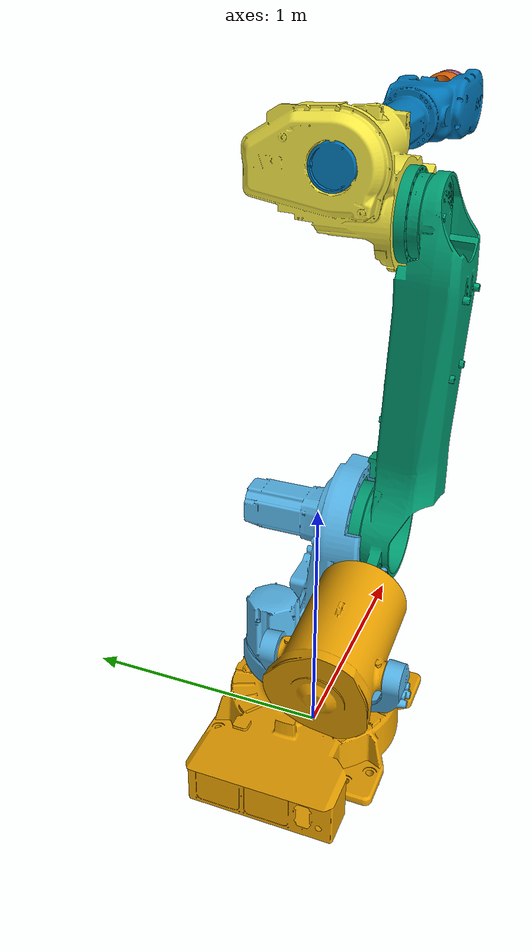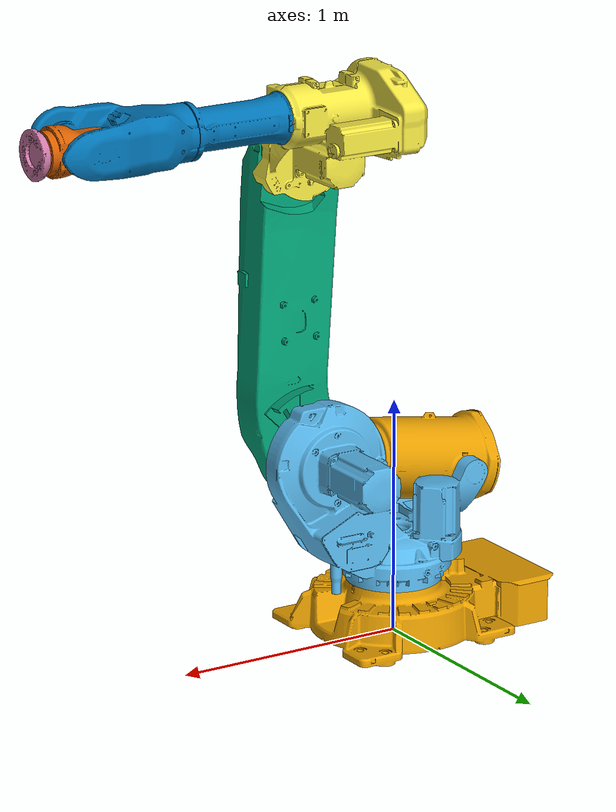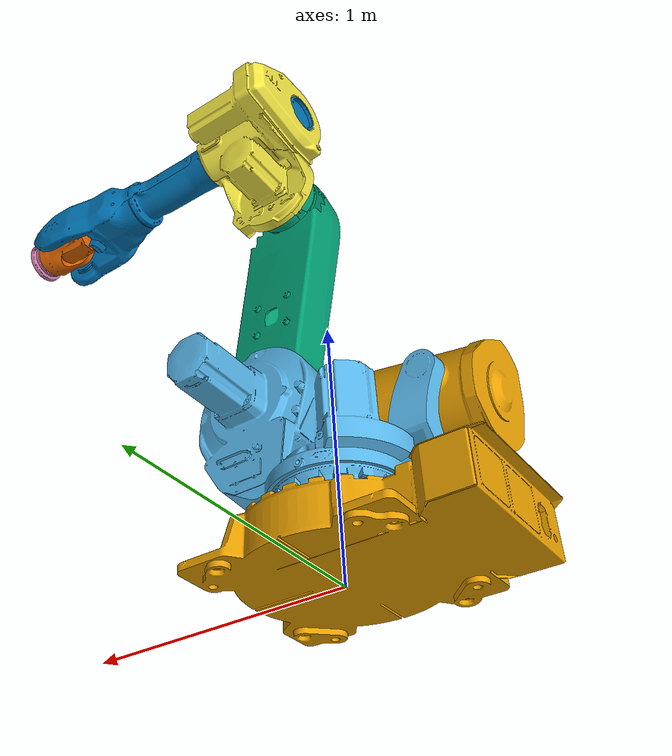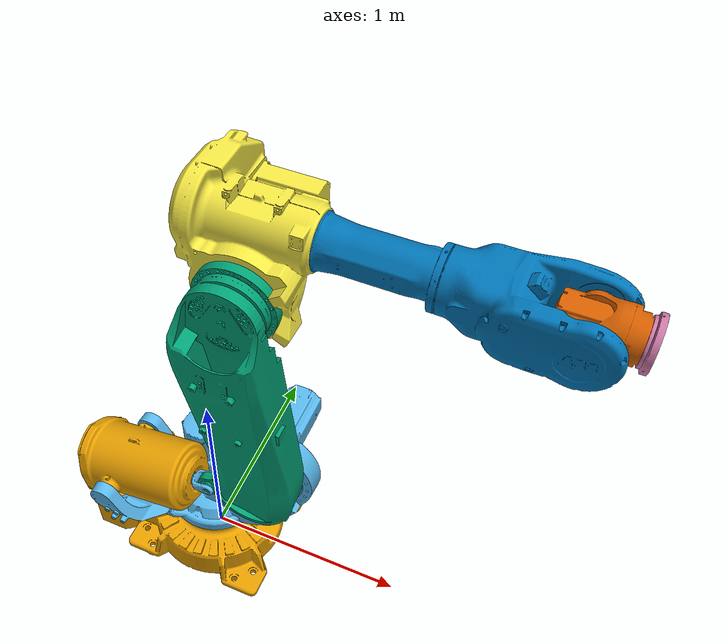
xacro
<?xml version="1.0" encoding="UTF-8"?>
<robot xmlns:xacro="http://wiki.ros.org/xacro" name="irb6640_205">

  <!-- Use this if parameters are set from the launch file, otherwise delete -->
  <xacro:arg name="prefix" default="" />

  <xacro:arg name="use_mock_hardware" default="false" />
  <xacro:arg name="mock_sensor_commands" default="false" />
  <xacro:arg name="sim_gazebo_classic" default="false" />
  <xacro:arg name="sim_gazebo" default="false" />
  <xacro:arg name="simulation_controllers" default="" />

  <xacro:include filename="$(find abb_irb6640_support)/urdf/irb6640_205/irb6640_205_macro.xacro"/>
  <xacro:include filename="$(find abb_irb6640_support)/urdf/irb6640_205/irb6640_205_macro.ros2_control.xacro"/>

  <!-- Load robot's macro with parameters -->
  <!-- set prefix if multiple robots are used -->
  <xacro:irb6640_205 prefix="$(arg prefix)" >
  </xacro:irb6640_205>

  <xacro:irb6640_205_ros2_control
    name="irb6640_205"
    prefix="$(arg prefix)"
    use_mock_hardware="$(arg use_mock_hardware)"
    mock_sensor_commands="$(arg mock_sensor_commands)"
    sim_gazebo_classic="$(arg sim_gazebo_classic)"
    sim_gazebo="$(arg sim_gazebo)"
    simulation_controllers="$(arg simulation_controllers)" />

</robot>

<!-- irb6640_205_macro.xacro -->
<robot xmlns:xacro="http://wiki.ros.org/xacro">

  <xacro:include filename="$(find abb_resources)/urdf/common_materials.xacro"/>
  <xacro:include filename="$(find abb_resources)/urdf/inertials.xacro"/>

  <!-- tuning of origins declared here, as both link and joint origin has to be adjusted.
      Joint offsets are relative to previous joint.
      Link offsets are relative to base frame. -->
  <!-- joint1 -->
  <xacro:property name="x1" value="0.0" />
  <xacro:property name="y1" value="0.0" />
  <xacro:property name="z1" value="0.2345" />
  <!-- joint2 -->
  <xacro:property name="x2" value="0.32" />
  <xacro:property name="y2" value="-0.01" />
  <xacro:property name="z2" value="0.5455" />
  <!-- joint3 -->
  <xacro:property name="x3" value="0.0" />
  <xacro:property name="y3" value="-0.175" />
  <xacro:property name="z3" value="1.28" />
  <!-- joint4 -->
  <xacro:property name="x4" value="0.231" />
  <xacro:property name="y4" value="0.185" />
  <xacro:property name="z4" value="0.2" />
  <!-- joint5 -->
  <xacro:property name="x5" value="0.9115" />
  <xacro:property name="y5" value="0.0" />
  <xacro:property name="z5" value="0.0" />
  <!-- joint6 -->
  <xacro:property name="x6" value="0.2" />
  <xacro:property name="y6" value="0.0" />
  <xacro:property name="z6" value="0.0" />

  <!-- tool0 -->
  <xacro:property name="xt" value="0.0" />
  <xacro:property name="yt" value="0.0" />
  <xacro:property name="zt" value="0.0" />
  <!-- piston -->
  <xacro:property name="xp" value="-0.21995" />
  <xacro:property name="yp" value="0.0" />
  <xacro:property name="zp" value="-0.06725" />
  <!-- cylinder -->
  <xacro:property name="xc" value="-0.3647" />
  <xacro:property name="yc" value="0.0" />
  <xacro:property name="zc" value="0.4" />

  <xacro:macro name="irb6640_205" params="prefix">
    <!-- LINKS -->
    <!-- base link -->
    <link name="${prefix}base_link">
      <xacro:default_inertial/>
      <visual>
        <geometry>
          <mesh filename="package://abb_irb6640_support/meshes/irb6640_205/visual/base_link.dae" />
        </geometry>
      </visual>
      <collision>
        <geometry>
          <mesh filename="package://abb_irb6640_support/meshes/irb6640_205/collision/base_link.dae" />
        </geometry>
      </collision>
    </link>
    <!-- link 1 -->
    <link name="${prefix}link1">
      <xacro:default_inertial/>
      <visual>
        <origin xyz="${-x1} ${-y1} ${-z1}"/>
        <geometry>
          <mesh filename="package://abb_irb6640_support/meshes/irb6640_205/visual/link1.dae" />
        </geometry>
      </visual>
      <collision>
        <origin xyz="${-x1} ${-y1} ${-z1}"/>
        <geometry>
          <mesh filename="package://abb_irb6640_support/meshes/irb6640_205/collision/link1.dae" />
        </geometry>
      </collision>
    </link>
    <!-- link 2 -->
    <link name="${prefix}link2">
      <xacro:default_inertial/>
      <visual>
        <origin xyz="${-(x2+x1)} ${-(y2+y1)} ${-(z2+z1)}" />
        <geometry>
           <mesh filename="package://abb_irb6640_support/meshes/irb6640_205/visual/link2.dae" />
        </geometry>
      </visual>
      <collision>
        <origin xyz="${-(x2+x1)} ${-(y2+y1)} ${-(z2+z1)}" />
        <geometry>
           <mesh filename="package://abb_irb6640_support/meshes/irb6640_205/collision/link2.dae" />
        </geometry>
      </collision>
    </link>
    <!-- link 3 -->
    <link name="${prefix}link3">
      <xacro:default_inertial/>
      <visual>
        <origin xyz="${-(x3+x2+x1)} ${-(y3+y2+y1)} ${-(z3+z2+z1)}" />
        <geometry>
          <mesh filename="package://abb_irb6640_support/meshes/irb6640_205/visual/link3.dae" />
        </geometry>
      </visual>
      <collision>
        <origin xyz="${-(x3+x2+x1)} ${-(y3+y2+y1)} ${-(z3+z2+z1)}" />
        <geometry>
          <mesh filename="package://abb_irb6640_support/meshes/irb6640_205/collision/link3.dae" />
        </geometry>
      </collision>
    </link>
    <!-- link 4 -->
    <link name="${prefix}link4">
      <xacro:default_inertial/>
      <visual>
        <origin xyz="${-(x4+x3+x2+x1)} ${-(y4+y3+y2+y1)} ${-(z4+z3+z2+z1)}" />
        <geometry>
          <mesh filename="package://abb_irb6640_support/meshes/irb6640_205/visual/link4.dae" />
        </geometry>
      </visual>
      <collision>
        <origin xyz="${-(x4+x3+x2+x1)} ${-(y4+y3+y2+y1)} ${-(z4+z3+z2+z1)}" />
        <geometry>
          <mesh filename="package://abb_irb6640_support/meshes/irb6640_205/collision/link4.dae" />
        </geometry>
      </collision>
    </link>
    <!-- link 5 -->
    <link name="${prefix}link5">
      <xacro:default_inertial/>
      <visual>
        <origin xyz="${-(x5+x4+x3+x2+x1)} ${-(y5+y4+y3+y2+y1)} ${-(z5+z4+z3+z2+z1)}" />
        <geometry>
          <mesh filename="package://abb_irb6640_support/meshes/irb6640_205/visual/link5.dae" />
        </geometry>
      </visual>
      <collision>
        <origin xyz="${-(x5+x4+x3+x2+x1)} ${-(y5+y4+y3+y2+y1)} ${-(z5+z4+z3+z2+z1)}" />
        <geometry>
          <mesh filename="package://abb_irb6640_support/meshes/irb6640_205/collision/link5.dae" />
        </geometry>
      </collision>
    </link>
    <!-- link 6 -->
    <link name="${prefix}link6">
      <xacro:default_inertial/>
      <visual>
        <origin xyz="${-(x6+x5+x4+x3+x2+x1)} ${-(y6+y5+y4+y3+y2+y1)} ${-(z6+z5+z4+z3+z2+z1)}" />
        <geometry>
          <mesh filename="package://abb_irb6640_support/meshes/irb6640_205/visual/link6.dae" />
        </geometry>
      </visual>
      <collision>
        <origin xyz="${-(x6+x5+x4+x3+x2+x1)} ${-(y6+y5+y4+y3+y2+y1)} ${-(z6+z5+z4+z3+z2+z1)}" />
        <geometry>
          <mesh filename="package://abb_irb6640_support/meshes/irb6640_205/collision/link6.dae" />
        </geometry>
      </collision>
    </link>
    <!-- All-zero tool frame. This frame should correspond to the TOOL frame of the robot's controller.) -->
    <link name="${prefix}tool0" />

    <!-- cylinder and piston -->
    <link name="${prefix}cylinder_link">
      <xacro:default_inertial/>
      <visual>
        <origin xyz="${-(xc+x1)} ${-(yc+y1)} ${-(zc+z1)}" />
        <geometry>
          <mesh filename="package://abb_irb6640_support/meshes/irb6640_205/visual/cylinder_link.dae"/>
        </geometry>
      </visual>
      <collision>
        <origin xyz="${-(xc+x1)} ${-(yc+y1)} ${-(zc+z1)}" />
        <geometry>
          <mesh filename="package://abb_irb6640_support/meshes/irb6640_205/collision/cylinder_link.dae"/>
        </geometry>
      </collision>
    </link>
    <link name="${prefix}piston_link">
      <xacro:default_inertial/>
      <visual>
        <origin xyz="${-(xp+x2+x1)} ${-(yp+y2+y1)} ${-(zp+z2+z1)}" />
        <geometry>
          <mesh filename="package://abb_irb6640_support/meshes/irb6640_205/visual/piston_link.dae"/>
        </geometry>
      </visual>
      <collision>
        <origin xyz="${-(xp+x2+x1)} ${-(yp+y2+y1)} ${-(zp+z2+z1)}" />
        <geometry>
          <mesh filename="package://abb_irb6640_support/meshes/irb6640_205/collision/piston_link.dae"/>
        </geometry>
      </collision>
    </link>
    <!-- END LINKS -->

    <!-- JOINTS -->
    <!-- joint 1 -->
    <joint name="${prefix}joint_1" type="revolute">
      <origin xyz="0 ${y1} ${z1}"/>
      <parent link="${prefix}base_link" />
      <child link="${prefix}link1" />
      <axis xyz="0 0 1"/>
      <limit effort="0" lower="${radians(-170)}" upper="${radians(170)}" velocity="${radians(100)}" />
    </joint>
    <!-- joint 2 -->
    <joint name="${prefix}joint_2" type="revolute">
      <origin xyz="${x2} ${y2} ${z2}"/>
      <parent link="${prefix}link1" />
      <child link="${prefix}link2" />
      <axis xyz="0 1 0" />
      <limit effort="0" lower="${radians(-65)}" upper="${radians(85)}" velocity="${radians(90)}" />
    </joint>
    <!-- joint 3 -->
    <joint name="${prefix}joint_3" type="revolute">
      <origin xyz="${x3} ${y3} ${z3}"/>
      <parent link="${prefix}link2" />
      <child link="${prefix}link3" />
      <axis xyz="0 1 0" />
      <limit effort="0" lower="${radians(-180)}" upper="${radians(70)}" velocity="${radians(90)}" />
    </joint>
    <!-- joint 4 -->
    <joint name="${prefix}joint_4" type="revolute">
      <origin xyz="${x4} ${y4} ${z4}"/>
      <parent link="${prefix}link3" />
      <child link="${prefix}link4" />
      <axis xyz="1 0 0" />
      <limit effort="0" lower="${radians(-300)}" upper="${radians(300)}" velocity="${radians(170)}" />
    </joint>
    <!-- joint 5 -->
    <joint name="${prefix}joint_5" type="revolute">
      <origin xyz="${x5} ${y5} ${z5}"/>
      <parent link="${prefix}link4" />
      <child link="${prefix}link5" />
      <axis xyz="0 1 0" />
      <limit effort="0" lower="${radians(-100)}" upper="${radians(100)}" velocity="${radians(120)}" />
    </joint>
    <!-- joint 6 -->
    <joint name="${prefix}joint_6" type="revolute">
      <origin xyz="${x6} ${y6} ${z6}"/>
      <parent link="${prefix}link5" />
      <child link="${prefix}link6" />
      <axis xyz="1 0 0" />
      <limit effort="0" lower="${radians(-360)}" upper="${radians(360)}" velocity="${radians(190)}" />
    </joint>

    <!-- tool frame - fixed frame -->
    <joint name="${prefix}joint_6-tool0" type="fixed">
      <origin xyz="${xt} ${yt} ${zt}" rpy="0 ${radians(90)} 0"/>
      <parent link="${prefix}link6" />
      <child link="${prefix}tool0" />
    </joint>

    <!-- piston & cylinder joints -->
    <joint name="${prefix}piston_joint" type="continuous">
      <origin xyz="${xp} ${yp} ${zp}"/>
      <axis xyz="0 1 0"/>
      <parent link="${prefix}link2"/>
      <child link="${prefix}piston_link"/>
      <mimic joint="${prefix}joint_2" multiplier="-1.3"/>
    </joint>
    <joint name="${prefix}cylinder_joint" type="continuous">
      <origin xyz="${xc} ${yc} ${zc}"/>
      <axis xyz="0 1 0"/>
      <parent link="${prefix}link1"/>
      <child link="${prefix}cylinder_link"/>
      <mimic joint="${prefix}joint_2" multiplier="-0.3"/>
    </joint>
    <!-- END JOINTS -->

    <!-- This frame should correspond to the BASE coordinate system of robot's controller.) -->
    <link name="${prefix}base" />
    <!-- ROS base_link to ABB World Coordinates transform -->
    <joint name="${prefix}base_link-base" type="fixed">
      <origin xyz="0 0 0" />
      <parent link="${prefix}base_link" />
      <child link="${prefix}base" />
    </joint>

  </xacro:macro>
</robot>
